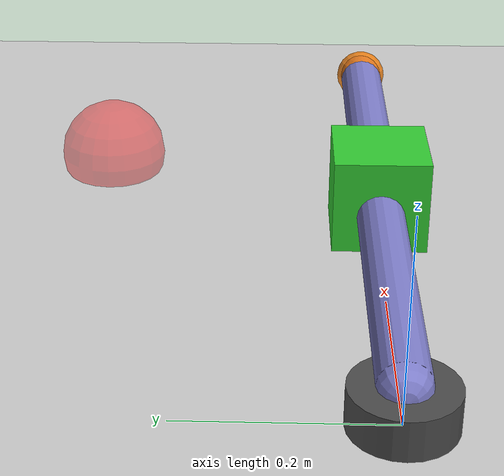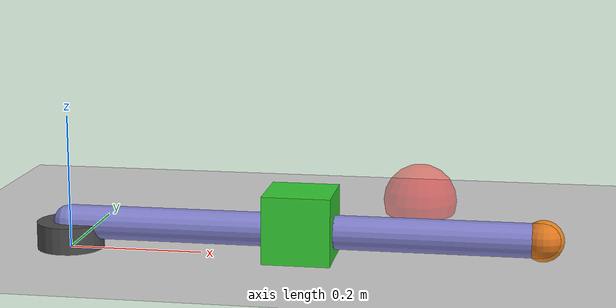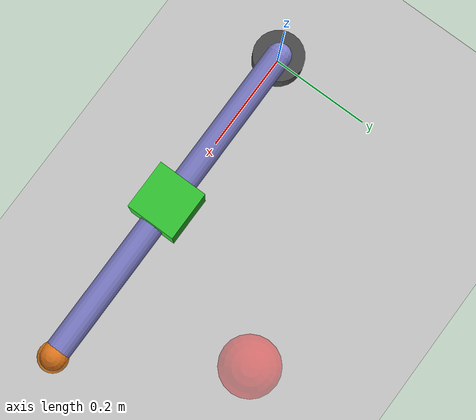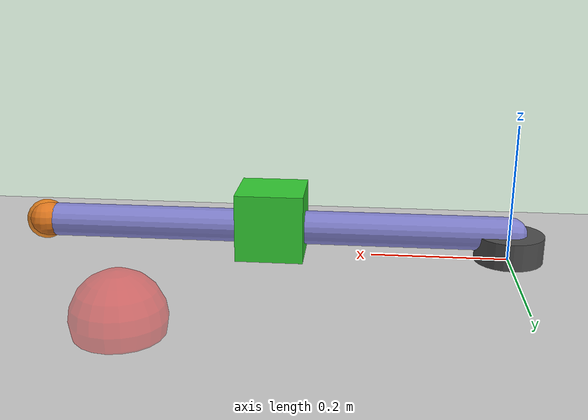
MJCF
<mujoco model="push_box">
  <compiler angle="degree" coordinate="local" inertiafromgeom="true"/>

  <option timestep="0.002" integrator="Euler" gravity="0 0 -9.81">
    <flag warmstart="enable"/>
  </option>

  <visual>
    <global offwidth="1280" offheight="720"/>
    <quality shadowsize="4096"/>
    <map force="0.1" zfar="30"/>
  </visual>

  <asset>
    <texture builtin="gradient" height="100" rgb1="0.3 0.5 0.7" rgb2="0.1 0.2 0.3" type="skybox" width="100"/>
    <texture builtin="flat" height="1278" mark="cross" markrgb="1 1 1" name="texgeom" random="0.01" rgb1="0.8 0.6 0.4" rgb2="0.8 0.6 0.4" type="cube" width="127"/>
    <texture builtin="checker" height="100" name="texplane" rgb1="0.2 0.2 0.2" rgb2="0.3 0.3 0.3" type="2d" width="100"/>
    <material name="MatPlane" reflectance="0.3" shininess="0.5" specular="0.5" texrepeat="3 3" texture="texplane"/>
    <material name="geom" texture="texgeom" texuniform="true"/>
  </asset>

  <default>
    <joint armature="0.01" damping="0.1" limited="true"/>
    <geom conaffinity="1" condim="3" contype="1" friction="0.5 0.005 0.0001" margin="0.001" material="geom" rgba="0.8 0.6 0.4 1"/>
  </default>

  <worldbody>
    <!-- Ground plane -->
    <light directional="true" diffuse="0.8 0.8 0.8" pos="0 0 3" dir="0 0 -1"/>
    <light directional="true" diffuse="0.4 0.4 0.4" pos="0 0 3" dir="1 1 -1"/>
    <geom name="floor" type="plane" size="3 3 0.1" rgba="0.8 0.8 0.8 1" material="MatPlane"/>

    <!-- Robot arm base — sits on the ground plane (z=0.02) so arm sweeps at box height -->
    <body name="arm_base" pos="0 0 0.02">
      <geom name="base_geom" type="cylinder" size="0.05 0.02" rgba="0.3 0.3 0.3 1"/>
      <body name="upper_arm" pos="0 0 0.02">
        <joint name="shoulder" type="hinge" axis="0 0 1" range="-180 180" damping="0.5"/>
        <geom name="upper_arm_geom" type="capsule" fromto="0 0 0 0.4 0 0" size="0.025" rgba="0.5 0.5 0.8 1"/>
        <body name="forearm" pos="0.4 0 0">
          <joint name="elbow" type="hinge" axis="0 0 1" range="-180 180" damping="0.5"/>
          <geom name="forearm_geom" type="capsule" fromto="0 0 0 0.3 0 0" size="0.025" rgba="0.5 0.5 0.8 1"/>
          <site name="endeffector" pos="0.3 0 0" size="0.03" rgba="1 0.5 0 0.8"/>
        </body>
      </body>
    </body>

    <!-- Box (target object to push) — on the ground, within arm reach -->
    <body name="box" pos="0.35 0 0.05">
      <freejoint name="box_freejoint"/>
      <geom name="box_geom" type="box" size="0.05 0.05 0.05" mass="0.5" rgba="0.2 0.8 0.2 1" friction="0.5 0.005 0.0001"/>
      <site name="box_center" pos="0 0 0" size="0.01" rgba="0 1 0 1"/>
    </body>

    <!-- Goal marker (visual only) — within arm+push range -->
    <site name="goal" pos="0.5 0.3 0.02" size="0.06" rgba="1 0 0 0.4" type="sphere"/>
  </worldbody>

  <actuator>
    <!-- Torque control for arm joints -->
    <motor name="shoulder_motor" joint="shoulder" gear="1.0" ctrllimited="true" ctrlrange="-10 10"/>
    <motor name="elbow_motor" joint="elbow" gear="1.0" ctrllimited="true" ctrlrange="-10 10"/>
  </actuator>
</mujoco>
